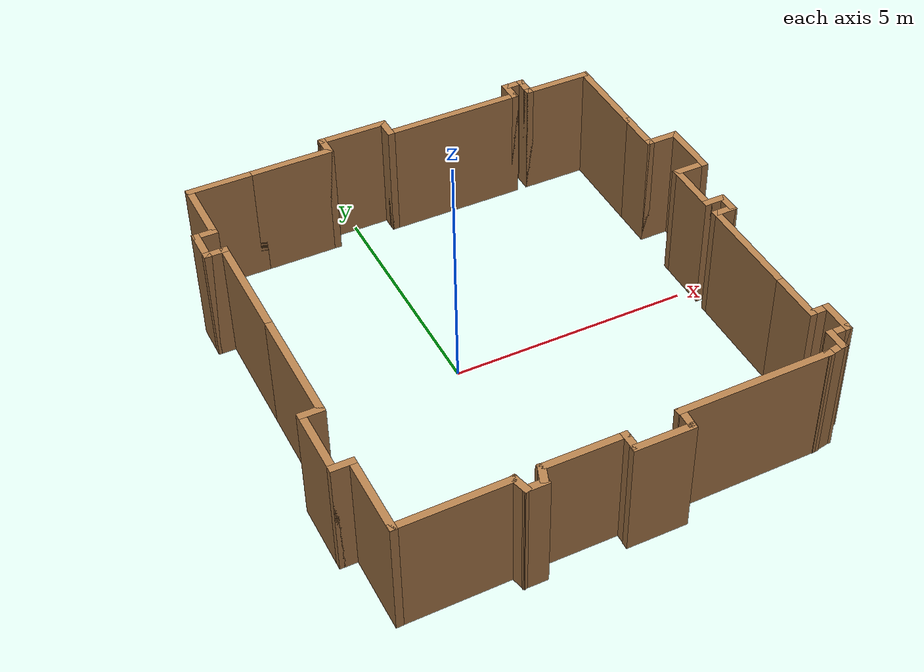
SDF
<?xml version='1.0'?>
<sdf version='1.7'>
  <model name='Hider_1'>
    <pose>1.01476 -0.118994 0 0 -0 0</pose>
    <link name='Wall_25'>
      <collision name='Wall_25_Collision'>
        <geometry>
          <box>
            <size>2.34925 0.15 2.5</size>
          </box>
        </geometry>
        <pose>0 0 1.25 0 -0 0</pose>
      </collision>
      <visual name='Wall_25_Visual'>
        <pose>0 0 1.25 0 -0 0</pose>
        <geometry>
          <box>
            <size>2.34925 0.15 2.5</size>
          </box>
        </geometry>
        <material>
          <script>
            <uri>file://media/materials/scripts/gazebo.material</uri>
            <name>Gazebo/Wood</name>
          </script>
          <ambient>1 1 1 1</ambient>
        </material>
        <meta>
          <layer>0</layer>
        </meta>
      </visual>
      <pose>-3.44472 -4.81973 0 0 -0 -3.1312</pose>
    </link>
    <link name='Wall_27'>
      <collision name='Wall_27_Collision'>
        <geometry>
          <box>
            <size>0.446572 0.15 2.5</size>
          </box>
        </geometry>
        <pose>0 0 1.25 0 -0 0</pose>
      </collision>
      <visual name='Wall_27_Visual'>
        <pose>0 0 1.25 0 -0 0</pose>
        <geometry>
          <box>
            <size>0.446572 0.15 2.5</size>
          </box>
        </geometry>
        <material>
          <script>
            <uri>file://media/materials/scripts/gazebo.material</uri>
            <name>Gazebo/Wood</name>
          </script>
          <ambient>1 1 1 1</ambient>
        </material>
        <meta>
          <layer>0</layer>
        </meta>
      </visual>
      <pose>-2.30227 -4.94613 0 0 -0 -1.31747</pose>
    </link>
    <link name='Wall_28'>
      <collision name='Wall_28_Collision'>
        <geometry>
          <box>
            <size>0.5 0.15 2.5</size>
          </box>
        </geometry>
        <pose>0 0 1.25 0 -0 0</pose>
      </collision>
      <visual name='Wall_28_Visual'>
        <pose>0 0 1.25 0 -0 0</pose>
        <geometry>
          <box>
            <size>0.5 0.15 2.5</size>
          </box>
        </geometry>
        <material>
          <script>
            <uri>file://media/materials/scripts/gazebo.material</uri>
            <name>Gazebo/Wood</name>
          </script>
          <ambient>1 1 1 1</ambient>
        </material>
        <meta>
          <layer>0</layer>
        </meta>
      </visual>
      <pose>-2.09011 -5.08968 0 0 -0 0</pose>
    </link>
    <link name='Wall_29'>
      <collision name='Wall_29_Collision'>
        <geometry>
          <box>
            <size>0.431547 0.15 2.5</size>
          </box>
        </geometry>
        <pose>0 0 1.25 0 -0 0</pose>
      </collision>
      <visual name='Wall_29_Visual'>
        <pose>0 0 1.25 0 -0 0</pose>
        <geometry>
          <box>
            <size>0.431547 0.15 2.5</size>
          </box>
        </geometry>
        <material>
          <script>
            <uri>file://media/materials/scripts/gazebo.material</uri>
            <name>Gazebo/Wood</name>
          </script>
          <ambient>1 1 1 1</ambient>
        </material>
        <meta>
          <layer>0</layer>
        </meta>
      </visual>
      <pose>-1.86651 -4.91182 0 0 -0 1.21831</pose>
    </link>
    <link name='Wall_30'>
      <collision name='Wall_30_Collision'>
        <geometry>
          <box>
            <size>1.75 0.15 2.5</size>
          </box>
        </geometry>
        <pose>0 0 1.25 0 -0 0</pose>
      </collision>
      <visual name='Wall_30_Visual'>
        <pose>0 0 1.25 0 -0 0</pose>
        <geometry>
          <box>
            <size>1.75 0.15 2.5</size>
          </box>
        </geometry>
        <material>
          <script>
            <uri>file://media/materials/scripts/gazebo.material</uri>
            <name>Gazebo/Wood</name>
          </script>
          <ambient>1 1 1 1</ambient>
        </material>
        <meta>
          <layer>0</layer>
        </meta>
      </visual>
      <pose>-1.02363 -4.7797 0 0 -0 0</pose>
    </link>
    <link name='Wall_31'>
      <collision name='Wall_31_Collision'>
        <geometry>
          <box>
            <size>0.443452 0.15 2.5</size>
          </box>
        </geometry>
        <pose>0 0 1.25 0 -0 0</pose>
      </collision>
      <visual name='Wall_31_Visual'>
        <pose>0 0 1.25 0 -0 0</pose>
        <geometry>
          <box>
            <size>0.443452 0.15 2.5</size>
          </box>
        </geometry>
        <material>
          <script>
            <uri>file://media/materials/scripts/gazebo.material</uri>
            <name>Gazebo/Wood</name>
          </script>
          <ambient>1 1 1 1</ambient>
        </material>
        <meta>
          <layer>0</layer>
        </meta>
      </visual>
      <pose>-0.215052 -4.9264 0 0 -0 -1.55131</pose>
    </link>
    <link name='Wall_32'>
      <collision name='Wall_32_Collision'>
        <geometry>
          <box>
            <size>1.25657 0.15 2.5</size>
          </box>
        </geometry>
        <pose>0 0 1.25 0 -0 0</pose>
      </collision>
      <visual name='Wall_32_Visual'>
        <pose>0 0 1.25 0 -0 0</pose>
        <geometry>
          <box>
            <size>1.25657 0.15 2.5</size>
          </box>
        </geometry>
        <material>
          <script>
            <uri>file://media/materials/scripts/gazebo.material</uri>
            <name>Gazebo/Wood</name>
          </script>
          <ambient>1 1 1 1</ambient>
        </material>
        <meta>
          <layer>0</layer>
        </meta>
      </visual>
      <pose>0.329659 -5.11312 0 0 -0 0</pose>
    </link>
    <link name='Wall_33'>
      <collision name='Wall_33_Collision'>
        <geometry>
          <box>
            <size>0.498666 0.15 2.5</size>
          </box>
        </geometry>
        <pose>0 0 1.25 0 -0 0</pose>
      </collision>
      <visual name='Wall_33_Visual'>
        <pose>0 0 1.25 0 -0 0</pose>
        <geometry>
          <box>
            <size>0.498666 0.15 2.5</size>
          </box>
        </geometry>
        <material>
          <script>
            <uri>file://media/materials/scripts/gazebo.material</uri>
            <name>Gazebo/Wood</name>
          </script>
          <ambient>1 1 1 1</ambient>
        </material>
        <meta>
          <layer>0</layer>
        </meta>
      </visual>
      <pose>0.902529 -4.89896 0 0 -0 1.52404</pose>
    </link>
    <link name='Wall_34'>
      <collision name='Wall_34_Collision'>
        <geometry>
          <box>
            <size>3.23696 0.15 2.5</size>
          </box>
        </geometry>
        <pose>0 0 1.25 0 -0 0</pose>
      </collision>
      <visual name='Wall_34_Visual'>
        <pose>0 0 1.25 0 -0 0</pose>
        <geometry>
          <box>
            <size>3.23696 0.15 2.5</size>
          </box>
        </geometry>
        <material>
          <script>
            <uri>file://media/materials/scripts/gazebo.material</uri>
            <name>Gazebo/Wood</name>
          </script>
          <ambient>1 1 1 1</ambient>
        </material>
        <meta>
          <layer>0</layer>
        </meta>
      </visual>
      <pose>2.43123 -4.71167 0 0 -0 0.00852</pose>
    </link>
    <link name='Wall_38'>
      <collision name='Wall_38_Collision'>
        <geometry>
          <box>
            <size>1.75 0.15 2.5</size>
          </box>
        </geometry>
        <pose>0 0 1.25 0 -0 0</pose>
      </collision>
      <visual name='Wall_38_Visual'>
        <pose>0 0 1.25 0 -0 0</pose>
        <geometry>
          <box>
            <size>1.75 0.15 2.5</size>
          </box>
        </geometry>
        <material>
          <script>
            <uri>file://media/materials/scripts/gazebo.material</uri>
            <name>Gazebo/Wood</name>
          </script>
          <ambient>1 1 1 1</ambient>
        </material>
        <meta>
          <layer>0</layer>
        </meta>
      </visual>
      <pose>-4.55 -4.03688 0 0 -0 1.5708</pose>
    </link>
    <link name='Wall_40'>
      <collision name='Wall_40_Collision'>
        <geometry>
          <box>
            <size>0.5 0.15 2.5</size>
          </box>
        </geometry>
        <pose>0 0 1.25 0 -0 0</pose>
      </collision>
      <visual name='Wall_40_Visual'>
        <pose>0 0 1.25 0 -0 0</pose>
        <geometry>
          <box>
            <size>0.5 0.15 2.5</size>
          </box>
        </geometry>
        <material>
          <script>
            <uri>file://media/materials/scripts/gazebo.material</uri>
            <name>Gazebo/Wood</name>
          </script>
          <ambient>1 1 1 1</ambient>
        </material>
        <meta>
          <layer>0</layer>
        </meta>
      </visual>
      <pose>-4.725 -3.23688 0 0 -0 3.14159</pose>
    </link>
    <link name='Wall_41'>
      <collision name='Wall_41_Collision'>
        <geometry>
          <box>
            <size>1.5 0.15 2.5</size>
          </box>
        </geometry>
        <pose>0 0 1.25 0 -0 0</pose>
      </collision>
      <visual name='Wall_41_Visual'>
        <pose>0 0 1.25 0 -0 0</pose>
        <geometry>
          <box>
            <size>1.5 0.15 2.5</size>
          </box>
        </geometry>
        <material>
          <script>
            <uri>file://media/materials/scripts/gazebo.material</uri>
            <name>Gazebo/Wood</name>
          </script>
          <ambient>1 1 1 1</ambient>
        </material>
        <meta>
          <layer>0</layer>
        </meta>
      </visual>
      <pose>-4.9 -2.56188 0 0 -0 1.5708</pose>
    </link>
    <link name='Wall_42'>
      <collision name='Wall_42_Collision'>
        <geometry>
          <box>
            <size>0.5 0.15 2.5</size>
          </box>
        </geometry>
        <pose>0 0 1.25 0 -0 0</pose>
      </collision>
      <visual name='Wall_42_Visual'>
        <pose>0 0 1.25 0 -0 0</pose>
        <geometry>
          <box>
            <size>0.5 0.15 2.5</size>
          </box>
        </geometry>
        <material>
          <script>
            <uri>file://media/materials/scripts/gazebo.material</uri>
            <name>Gazebo/Wood</name>
          </script>
          <ambient>1 1 1 1</ambient>
        </material>
        <meta>
          <layer>0</layer>
        </meta>
      </visual>
      <pose>-4.725 -1.88688 0 0 -0 0</pose>
    </link>
    <link name='Wall_44'>
      <collision name='Wall_44_Collision'>
        <geometry>
          <box>
            <size>2.5 0.15 2.5</size>
          </box>
        </geometry>
        <pose>0 0 1.25 0 -0 0</pose>
      </collision>
      <visual name='Wall_44_Visual'>
        <pose>0 0 1.25 0 -0 0</pose>
        <geometry>
          <box>
            <size>2.5 0.15 2.5</size>
          </box>
        </geometry>
        <material>
          <script>
            <uri>file://media/materials/scripts/gazebo.material</uri>
            <name>Gazebo/Wood</name>
          </script>
          <ambient>1 1 1 1</ambient>
        </material>
        <meta>
          <layer>0</layer>
        </meta>
      </visual>
      <pose>-4.55 -0.711876 0 0 -0 1.5708</pose>
    </link>
    <link name='Wall_47'>
      <collision name='Wall_47_Collision'>
        <geometry>
          <box>
            <size>2.5 0.15 2.5</size>
          </box>
        </geometry>
        <pose>0 0 1.25 0 -0 0</pose>
      </collision>
      <visual name='Wall_47_Visual'>
        <pose>0 0 1.25 0 -0 0</pose>
        <geometry>
          <box>
            <size>2.5 0.15 2.5</size>
          </box>
        </geometry>
        <material>
          <script>
            <uri>file://media/materials/scripts/gazebo.material</uri>
            <name>Gazebo/Wood</name>
          </script>
          <ambient>1 1 1 1</ambient>
        </material>
        <meta>
          <layer>0</layer>
        </meta>
      </visual>
      <pose>-4.55 1.63812 0 0 -0 1.5708</pose>
    </link>
    <link name='Wall_49'>
      <collision name='Wall_49_Collision'>
        <geometry>
          <box>
            <size>0.5 0.15 2.5</size>
          </box>
        </geometry>
        <pose>0 0 1.25 0 -0 0</pose>
      </collision>
      <visual name='Wall_49_Visual'>
        <pose>0 0 1.25 0 -0 0</pose>
        <geometry>
          <box>
            <size>0.5 0.15 2.5</size>
          </box>
        </geometry>
        <material>
          <script>
            <uri>file://media/materials/scripts/gazebo.material</uri>
            <name>Gazebo/Wood</name>
          </script>
          <ambient>1 1 1 1</ambient>
        </material>
        <meta>
          <layer>0</layer>
        </meta>
      </visual>
      <pose>-4.725 2.81312 0 0 -0 3.14159</pose>
    </link>
    <link name='Wall_50'>
      <collision name='Wall_50_Collision'>
        <geometry>
          <box>
            <size>0.75 0.15 2.5</size>
          </box>
        </geometry>
        <pose>0 0 1.25 0 -0 0</pose>
      </collision>
      <visual name='Wall_50_Visual'>
        <pose>0 0 1.25 0 -0 0</pose>
        <geometry>
          <box>
            <size>0.75 0.15 2.5</size>
          </box>
        </geometry>
        <material>
          <script>
            <uri>file://media/materials/scripts/gazebo.material</uri>
            <name>Gazebo/Wood</name>
          </script>
          <ambient>1 1 1 1</ambient>
        </material>
        <meta>
          <layer>0</layer>
        </meta>
      </visual>
      <pose>-4.9 3.11312 0 0 -0 1.5708</pose>
    </link>
    <link name='Wall_51'>
      <collision name='Wall_51_Collision'>
        <geometry>
          <box>
            <size>0.5 0.15 2.5</size>
          </box>
        </geometry>
        <pose>0 0 1.25 0 -0 0</pose>
      </collision>
      <visual name='Wall_51_Visual'>
        <pose>0 0 1.25 0 -0 0</pose>
        <geometry>
          <box>
            <size>0.5 0.15 2.5</size>
          </box>
        </geometry>
        <material>
          <script>
            <uri>file://media/materials/scripts/gazebo.material</uri>
            <name>Gazebo/Wood</name>
          </script>
          <ambient>1 1 1 1</ambient>
        </material>
        <meta>
          <layer>0</layer>
        </meta>
      </visual>
      <pose>-4.725 3.41312 0 0 -0 0</pose>
    </link>
    <link name='Wall_52'>
      <collision name='Wall_52_Collision'>
        <geometry>
          <box>
            <size>1.5 0.15 2.5</size>
          </box>
        </geometry>
        <pose>0 0 1.25 0 -0 0</pose>
      </collision>
      <visual name='Wall_52_Visual'>
        <pose>0 0 1.25 0 -0 0</pose>
        <geometry>
          <box>
            <size>1.5 0.15 2.5</size>
          </box>
        </geometry>
        <material>
          <script>
            <uri>file://media/materials/scripts/gazebo.material</uri>
            <name>Gazebo/Wood</name>
          </script>
          <ambient>1 1 1 1</ambient>
        </material>
        <meta>
          <layer>0</layer>
        </meta>
      </visual>
      <pose>-4.55 4.08812 0 0 -0 1.5708</pose>
    </link>
    <link name='Wall_53'>
      <collision name='Wall_53_Collision'>
        <geometry>
          <box>
            <size>1.5 0.15 2.5</size>
          </box>
        </geometry>
        <pose>0 0 1.25 0 -0 0</pose>
      </collision>
      <visual name='Wall_53_Visual'>
        <pose>0 0 1.25 0 -0 0</pose>
        <geometry>
          <box>
            <size>1.5 0.15 2.5</size>
          </box>
        </geometry>
        <material>
          <script>
            <uri>file://media/materials/scripts/gazebo.material</uri>
            <name>Gazebo/Wood</name>
          </script>
          <ambient>1 1 1 1</ambient>
        </material>
        <meta>
          <layer>0</layer>
        </meta>
      </visual>
      <pose>-3.875 4.76312 0 0 -0 0</pose>
    </link>
    <link name='Wall_55'>
      <collision name='Wall_55_Collision'>
        <geometry>
          <box>
            <size>1.75 0.15 2.5</size>
          </box>
        </geometry>
        <pose>0 0 1.25 0 -0 0</pose>
      </collision>
      <visual name='Wall_55_Visual'>
        <pose>0 0 1.25 0 -0 0</pose>
        <geometry>
          <box>
            <size>1.75 0.15 2.5</size>
          </box>
        </geometry>
        <material>
          <script>
            <uri>file://media/materials/scripts/gazebo.material</uri>
            <name>Gazebo/Wood</name>
          </script>
          <ambient>1 1 1 1</ambient>
        </material>
        <meta>
          <layer>0</layer>
        </meta>
      </visual>
      <pose>-2.4 4.76312 0 0 -0 0</pose>
    </link>
    <link name='Wall_56'>
      <collision name='Wall_56_Collision'>
        <geometry>
          <box>
            <size>0.5 0.15 2.5</size>
          </box>
        </geometry>
        <pose>0 0 1.25 0 -0 0</pose>
      </collision>
      <visual name='Wall_56_Visual'>
        <pose>0 0 1.25 0 -0 0</pose>
        <geometry>
          <box>
            <size>0.5 0.15 2.5</size>
          </box>
        </geometry>
        <material>
          <script>
            <uri>file://media/materials/scripts/gazebo.material</uri>
            <name>Gazebo/Wood</name>
          </script>
          <ambient>1 1 1 1</ambient>
        </material>
        <meta>
          <layer>0</layer>
        </meta>
      </visual>
      <pose>-1.6 4.93812 0 0 -0 1.5708</pose>
    </link>
    <link name='Wall_57'>
      <collision name='Wall_57_Collision'>
        <geometry>
          <box>
            <size>1.5 0.15 2.5</size>
          </box>
        </geometry>
        <pose>0 0 1.25 0 -0 0</pose>
      </collision>
      <visual name='Wall_57_Visual'>
        <pose>0 0 1.25 0 -0 0</pose>
        <geometry>
          <box>
            <size>1.5 0.15 2.5</size>
          </box>
        </geometry>
        <material>
          <script>
            <uri>file://media/materials/scripts/gazebo.material</uri>
            <name>Gazebo/Wood</name>
          </script>
          <ambient>1 1 1 1</ambient>
        </material>
        <meta>
          <layer>0</layer>
        </meta>
      </visual>
      <pose>-0.925 5.11312 0 0 -0 0</pose>
    </link>
    <link name='Wall_58'>
      <collision name='Wall_58_Collision'>
        <geometry>
          <box>
            <size>0.5 0.15 2.5</size>
          </box>
        </geometry>
        <pose>0 0 1.25 0 -0 0</pose>
      </collision>
      <visual name='Wall_58_Visual'>
        <pose>0 0 1.25 0 -0 0</pose>
        <geometry>
          <box>
            <size>0.5 0.15 2.5</size>
          </box>
        </geometry>
        <material>
          <script>
            <uri>file://media/materials/scripts/gazebo.material</uri>
            <name>Gazebo/Wood</name>
          </script>
          <ambient>1 1 1 1</ambient>
        </material>
        <meta>
          <layer>0</layer>
        </meta>
      </visual>
      <pose>-0.25 4.93812 0 0 -0 -1.5708</pose>
    </link>
    <link name='Wall_59'>
      <collision name='Wall_59_Collision'>
        <geometry>
          <box>
            <size>3 0.15 2.5</size>
          </box>
        </geometry>
        <pose>0 0 1.25 0 -0 0</pose>
      </collision>
      <visual name='Wall_59_Visual'>
        <pose>0 0 1.25 0 -0 0</pose>
        <geometry>
          <box>
            <size>3 0.15 2.5</size>
          </box>
        </geometry>
        <material>
          <script>
            <uri>file://media/materials/scripts/gazebo.material</uri>
            <name>Gazebo/Wood</name>
          </script>
          <ambient>1 1 1 1</ambient>
        </material>
        <meta>
          <layer>0</layer>
        </meta>
      </visual>
      <pose>1.175 4.76312 0 0 -0 0</pose>
    </link>
    <link name='Wall_60'>
      <collision name='Wall_60_Collision'>
        <geometry>
          <box>
            <size>0.5 0.15 2.5</size>
          </box>
        </geometry>
        <pose>0 0 1.25 0 -0 0</pose>
      </collision>
      <visual name='Wall_60_Visual'>
        <pose>0 0 1.25 0 -0 0</pose>
        <geometry>
          <box>
            <size>0.5 0.15 2.5</size>
          </box>
        </geometry>
        <material>
          <script>
            <uri>file://media/materials/scripts/gazebo.material</uri>
            <name>Gazebo/Wood</name>
          </script>
          <ambient>1 1 1 1</ambient>
        </material>
        <meta>
          <layer>0</layer>
        </meta>
      </visual>
      <pose>2.6 4.93812 0 0 -0 1.5708</pose>
    </link>
    <link name='Wall_61'>
      <collision name='Wall_61_Collision'>
        <geometry>
          <box>
            <size>0.5 0.15 2.5</size>
          </box>
        </geometry>
        <pose>0 0 1.25 0 -0 0</pose>
      </collision>
      <visual name='Wall_61_Visual'>
        <pose>0 0 1.25 0 -0 0</pose>
        <geometry>
          <box>
            <size>0.5 0.15 2.5</size>
          </box>
        </geometry>
        <material>
          <script>
            <uri>file://media/materials/scripts/gazebo.material</uri>
            <name>Gazebo/Wood</name>
          </script>
          <ambient>1 1 1 1</ambient>
        </material>
        <meta>
          <layer>0</layer>
        </meta>
      </visual>
      <pose>2.775 5.11312 0 0 -0 0</pose>
    </link>
    <link name='Wall_62'>
      <collision name='Wall_62_Collision'>
        <geometry>
          <box>
            <size>0.5 0.15 2.5</size>
          </box>
        </geometry>
        <pose>0 0 1.25 0 -0 0</pose>
      </collision>
      <visual name='Wall_62_Visual'>
        <pose>0 0 1.25 0 -0 0</pose>
        <geometry>
          <box>
            <size>0.5 0.15 2.5</size>
          </box>
        </geometry>
        <material>
          <script>
            <uri>file://media/materials/scripts/gazebo.material</uri>
            <name>Gazebo/Wood</name>
          </script>
          <ambient>1 1 1 1</ambient>
        </material>
        <meta>
          <layer>0</layer>
        </meta>
      </visual>
      <pose>2.95 4.93812 0 0 -0 -1.5708</pose>
    </link>
    <link name='Wall_63'>
      <collision name='Wall_63_Collision'>
        <geometry>
          <box>
            <size>1.5 0.15 2.5</size>
          </box>
        </geometry>
        <pose>0 0 1.25 0 -0 0</pose>
      </collision>
      <visual name='Wall_63_Visual'>
        <pose>0 0 1.25 0 -0 0</pose>
        <geometry>
          <box>
            <size>1.5 0.15 2.5</size>
          </box>
        </geometry>
        <material>
          <script>
            <uri>file://media/materials/scripts/gazebo.material</uri>
            <name>Gazebo/Wood</name>
          </script>
          <ambient>1 1 1 1</ambient>
        </material>
        <meta>
          <layer>0</layer>
        </meta>
      </visual>
      <pose>3.625 4.76312 0 0 -0 0</pose>
    </link>
    <link name='Wall_65'>
      <collision name='Wall_65_Collision'>
        <geometry>
          <box>
            <size>2 0.15 2.5</size>
          </box>
        </geometry>
        <pose>0 0 1.25 0 -0 0</pose>
      </collision>
      <visual name='Wall_65_Visual'>
        <pose>0 0 1.25 0 -0 0</pose>
        <geometry>
          <box>
            <size>2 0.15 2.5</size>
          </box>
        </geometry>
        <material>
          <script>
            <uri>file://media/materials/scripts/gazebo.material</uri>
            <name>Gazebo/Wood</name>
          </script>
          <ambient>1 1 1 1</ambient>
        </material>
        <meta>
          <layer>0</layer>
        </meta>
      </visual>
      <pose>4.3 3.83812 0 0 -0 -1.5708</pose>
    </link>
    <link name='Wall_67'>
      <collision name='Wall_67_Collision'>
        <geometry>
          <box>
            <size>1 0.15 2.5</size>
          </box>
        </geometry>
        <pose>0 0 1.25 0 -0 0</pose>
      </collision>
      <visual name='Wall_67_Visual'>
        <pose>0 0 1.25 0 -0 0</pose>
        <geometry>
          <box>
            <size>1 0.15 2.5</size>
          </box>
        </geometry>
        <material>
          <script>
            <uri>file://media/materials/scripts/gazebo.material</uri>
            <name>Gazebo/Wood</name>
          </script>
          <ambient>1 1 1 1</ambient>
        </material>
        <meta>
          <layer>0</layer>
        </meta>
      </visual>
      <pose>4.3 2.48812 0 0 -0 -1.5708</pose>
    </link>
    <link name='Wall_68'>
      <collision name='Wall_68_Collision'>
        <geometry>
          <box>
            <size>0.75 0.15 2.5</size>
          </box>
        </geometry>
        <pose>0 0 1.25 0 -0 0</pose>
      </collision>
      <visual name='Wall_68_Visual'>
        <pose>0 0 1.25 0 -0 0</pose>
        <geometry>
          <box>
            <size>0.75 0.15 2.5</size>
          </box>
        </geometry>
        <material>
          <script>
            <uri>file://media/materials/scripts/gazebo.material</uri>
            <name>Gazebo/Wood</name>
          </script>
          <ambient>1 1 1 1</ambient>
        </material>
        <meta>
          <layer>0</layer>
        </meta>
      </visual>
      <pose>4.6 2.06312 0 0 -0 0</pose>
    </link>
    <link name='Wall_69'>
      <collision name='Wall_69_Collision'>
        <geometry>
          <box>
            <size>1.25 0.15 2.5</size>
          </box>
        </geometry>
        <pose>0 0 1.25 0 -0 0</pose>
      </collision>
      <visual name='Wall_69_Visual'>
        <pose>0 0 1.25 0 -0 0</pose>
        <geometry>
          <box>
            <size>1.25 0.15 2.5</size>
          </box>
        </geometry>
        <material>
          <script>
            <uri>file://media/materials/scripts/gazebo.material</uri>
            <name>Gazebo/Wood</name>
          </script>
          <ambient>1 1 1 1</ambient>
        </material>
        <meta>
          <layer>0</layer>
        </meta>
      </visual>
      <pose>4.9 1.51312 0 0 -0 -1.5708</pose>
    </link>
    <link name='Wall_70'>
      <collision name='Wall_70_Collision'>
        <geometry>
          <box>
            <size>0.75 0.15 2.5</size>
          </box>
        </geometry>
        <pose>0 0 1.25 0 -0 0</pose>
      </collision>
      <visual name='Wall_70_Visual'>
        <pose>0 0 1.25 0 -0 0</pose>
        <geometry>
          <box>
            <size>0.75 0.15 2.5</size>
          </box>
        </geometry>
        <material>
          <script>
            <uri>file://media/materials/scripts/gazebo.material</uri>
            <name>Gazebo/Wood</name>
          </script>
          <ambient>1 1 1 1</ambient>
        </material>
        <meta>
          <layer>0</layer>
        </meta>
      </visual>
      <pose>4.6 0.963124 0 0 -0 3.14159</pose>
    </link>
    <link name='Wall_72'>
      <collision name='Wall_72_Collision'>
        <geometry>
          <box>
            <size>1.25 0.15 2.5</size>
          </box>
        </geometry>
        <pose>0 0 1.25 0 -0 0</pose>
      </collision>
      <visual name='Wall_72_Visual'>
        <pose>0 0 1.25 0 -0 0</pose>
        <geometry>
          <box>
            <size>1.25 0.15 2.5</size>
          </box>
        </geometry>
        <material>
          <script>
            <uri>file://media/materials/scripts/gazebo.material</uri>
            <name>Gazebo/Wood</name>
          </script>
          <ambient>1 1 1 1</ambient>
        </material>
        <meta>
          <layer>0</layer>
        </meta>
      </visual>
      <pose>4.3 0.413124 0 0 -0 -1.5708</pose>
    </link>
    <link name='Wall_73'>
      <collision name='Wall_73_Collision'>
        <geometry>
          <box>
            <size>0.5 0.15 2.5</size>
          </box>
        </geometry>
        <pose>0 0 1.25 0 -0 0</pose>
      </collision>
      <visual name='Wall_73_Visual'>
        <pose>0 0 1.25 0 -0 0</pose>
        <geometry>
          <box>
            <size>0.5 0.15 2.5</size>
          </box>
        </geometry>
        <material>
          <script>
            <uri>file://media/materials/scripts/gazebo.material</uri>
            <name>Gazebo/Wood</name>
          </script>
          <ambient>1 1 1 1</ambient>
        </material>
        <meta>
          <layer>0</layer>
        </meta>
      </visual>
      <pose>4.475 -0.136876 0 0 -0 0</pose>
    </link>
    <link name='Wall_74'>
      <collision name='Wall_74_Collision'>
        <geometry>
          <box>
            <size>0.5 0.15 2.5</size>
          </box>
        </geometry>
        <pose>0 0 1.25 0 -0 0</pose>
      </collision>
      <visual name='Wall_74_Visual'>
        <pose>0 0 1.25 0 -0 0</pose>
        <geometry>
          <box>
            <size>0.5 0.15 2.5</size>
          </box>
        </geometry>
        <material>
          <script>
            <uri>file://media/materials/scripts/gazebo.material</uri>
            <name>Gazebo/Wood</name>
          </script>
          <ambient>1 1 1 1</ambient>
        </material>
        <meta>
          <layer>0</layer>
        </meta>
      </visual>
      <pose>4.65 -0.311876 0 0 -0 -1.5708</pose>
    </link>
    <link name='Wall_75'>
      <collision name='Wall_75_Collision'>
        <geometry>
          <box>
            <size>0.5 0.15 2.5</size>
          </box>
        </geometry>
        <pose>0 0 1.25 0 -0 0</pose>
      </collision>
      <visual name='Wall_75_Visual'>
        <pose>0 0 1.25 0 -0 0</pose>
        <geometry>
          <box>
            <size>0.5 0.15 2.5</size>
          </box>
        </geometry>
        <material>
          <script>
            <uri>file://media/materials/scripts/gazebo.material</uri>
            <name>Gazebo/Wood</name>
          </script>
          <ambient>1 1 1 1</ambient>
        </material>
        <meta>
          <layer>0</layer>
        </meta>
      </visual>
      <pose>4.475 -0.486876 0 0 -0 3.14159</pose>
    </link>
    <link name='Wall_77'>
      <collision name='Wall_77_Collision'>
        <geometry>
          <box>
            <size>2.25 0.15 2.5</size>
          </box>
        </geometry>
        <pose>0 0 1.25 0 -0 0</pose>
      </collision>
      <visual name='Wall_77_Visual'>
        <pose>0 0 1.25 0 -0 0</pose>
        <geometry>
          <box>
            <size>2.25 0.15 2.5</size>
          </box>
        </geometry>
        <material>
          <script>
            <uri>file://media/materials/scripts/gazebo.material</uri>
            <name>Gazebo/Wood</name>
          </script>
          <ambient>1 1 1 1</ambient>
        </material>
        <meta>
          <layer>0</layer>
        </meta>
      </visual>
      <pose>4.3 -1.53688 0 0 -0 -1.5708</pose>
    </link>
    <link name='Wall_79'>
      <collision name='Wall_79_Collision'>
        <geometry>
          <box>
            <size>1.25 0.15 2.5</size>
          </box>
        </geometry>
        <pose>0 0 1.25 0 -0 0</pose>
      </collision>
      <visual name='Wall_79_Visual'>
        <pose>0 0 1.25 0 -0 0</pose>
        <geometry>
          <box>
            <size>1.25 0.15 2.5</size>
          </box>
        </geometry>
        <material>
          <script>
            <uri>file://media/materials/scripts/gazebo.material</uri>
            <name>Gazebo/Wood</name>
          </script>
          <ambient>1 1 1 1</ambient>
        </material>
        <meta>
          <layer>0</layer>
        </meta>
      </visual>
      <pose>4.3 -3.13688 0 0 -0 -1.5708</pose>
    </link>
    <link name='Wall_80'>
      <collision name='Wall_80_Collision'>
        <geometry>
          <box>
            <size>0.5 0.15 2.5</size>
          </box>
        </geometry>
        <pose>0 0 1.25 0 -0 0</pose>
      </collision>
      <visual name='Wall_80_Visual'>
        <pose>0 0 1.25 0 -0 0</pose>
        <geometry>
          <box>
            <size>0.5 0.15 2.5</size>
          </box>
        </geometry>
        <material>
          <script>
            <uri>file://media/materials/scripts/gazebo.material</uri>
            <name>Gazebo/Wood</name>
          </script>
          <ambient>1 1 1 1</ambient>
        </material>
        <meta>
          <layer>0</layer>
        </meta>
      </visual>
      <pose>4.475 -3.68688 0 0 -0 0</pose>
    </link>
    <link name='Wall_81'>
      <collision name='Wall_81_Collision'>
        <geometry>
          <box>
            <size>0.75 0.15 2.5</size>
          </box>
        </geometry>
        <pose>0 0 1.25 0 -0 0</pose>
      </collision>
      <visual name='Wall_81_Visual'>
        <pose>0 0 1.25 0 -0 0</pose>
        <geometry>
          <box>
            <size>0.75 0.15 2.5</size>
          </box>
        </geometry>
        <material>
          <script>
            <uri>file://media/materials/scripts/gazebo.material</uri>
            <name>Gazebo/Wood</name>
          </script>
          <ambient>1 1 1 1</ambient>
        </material>
        <meta>
          <layer>0</layer>
        </meta>
      </visual>
      <pose>4.65 -3.98688 0 0 -0 -1.5708</pose>
    </link>
    <link name='Wall_82'>
      <collision name='Wall_82_Collision'>
        <geometry>
          <box>
            <size>0.5 0.15 2.5</size>
          </box>
        </geometry>
        <pose>0 0 1.25 0 -0 0</pose>
      </collision>
      <visual name='Wall_82_Visual'>
        <pose>0 0 1.25 0 -0 0</pose>
        <geometry>
          <box>
            <size>0.5 0.15 2.5</size>
          </box>
        </geometry>
        <material>
          <script>
            <uri>file://media/materials/scripts/gazebo.material</uri>
            <name>Gazebo/Wood</name>
          </script>
          <ambient>1 1 1 1</ambient>
        </material>
        <meta>
          <layer>0</layer>
        </meta>
      </visual>
      <pose>4.475 -4.28688 0 0 -0 3.14159</pose>
    </link>
    <link name='Wall_84'>
      <collision name='Wall_84_Collision'>
        <geometry>
          <box>
            <size>0.5 0.15 2.5</size>
          </box>
        </geometry>
        <pose>0 0 1.25 0 -0 0</pose>
      </collision>
      <visual name='Wall_84_Visual'>
        <pose>0 0 1.25 0 -0 0</pose>
        <geometry>
          <box>
            <size>0.5 0.15 2.5</size>
          </box>
        </geometry>
        <material>
          <script>
            <uri>file://media/materials/scripts/gazebo.material</uri>
            <name>Gazebo/Wood</name>
          </script>
          <ambient>1 1 1 1</ambient>
        </material>
        <meta>
          <layer>0</layer>
        </meta>
      </visual>
      <pose>4.3 -4.46188 0 0 -0 -1.5708</pose>
    </link>
    <link name='Wall_85'>
      <collision name='Wall_85_Collision'>
        <geometry>
          <box>
            <size>0.481131 0.15 2.5</size>
          </box>
        </geometry>
        <pose>0 0 1.25 0 -0 0</pose>
      </collision>
      <visual name='Wall_85_Visual'>
        <pose>0 0 1.25 0 -0 0</pose>
        <geometry>
          <box>
            <size>0.481131 0.15 2.5</size>
          </box>
        </geometry>
        <material>
          <script>
            <uri>file://media/materials/scripts/gazebo.material</uri>
            <name>Gazebo/Wood</name>
          </script>
          <ambient>1 1 1 1</ambient>
        </material>
        <meta>
          <layer>0</layer>
        </meta>
      </visual>
      <pose>4.13733 -4.6677 0 0 -0 -2.95435</pose>
    </link>
    <static>1</static>
  </model>
</sdf>
